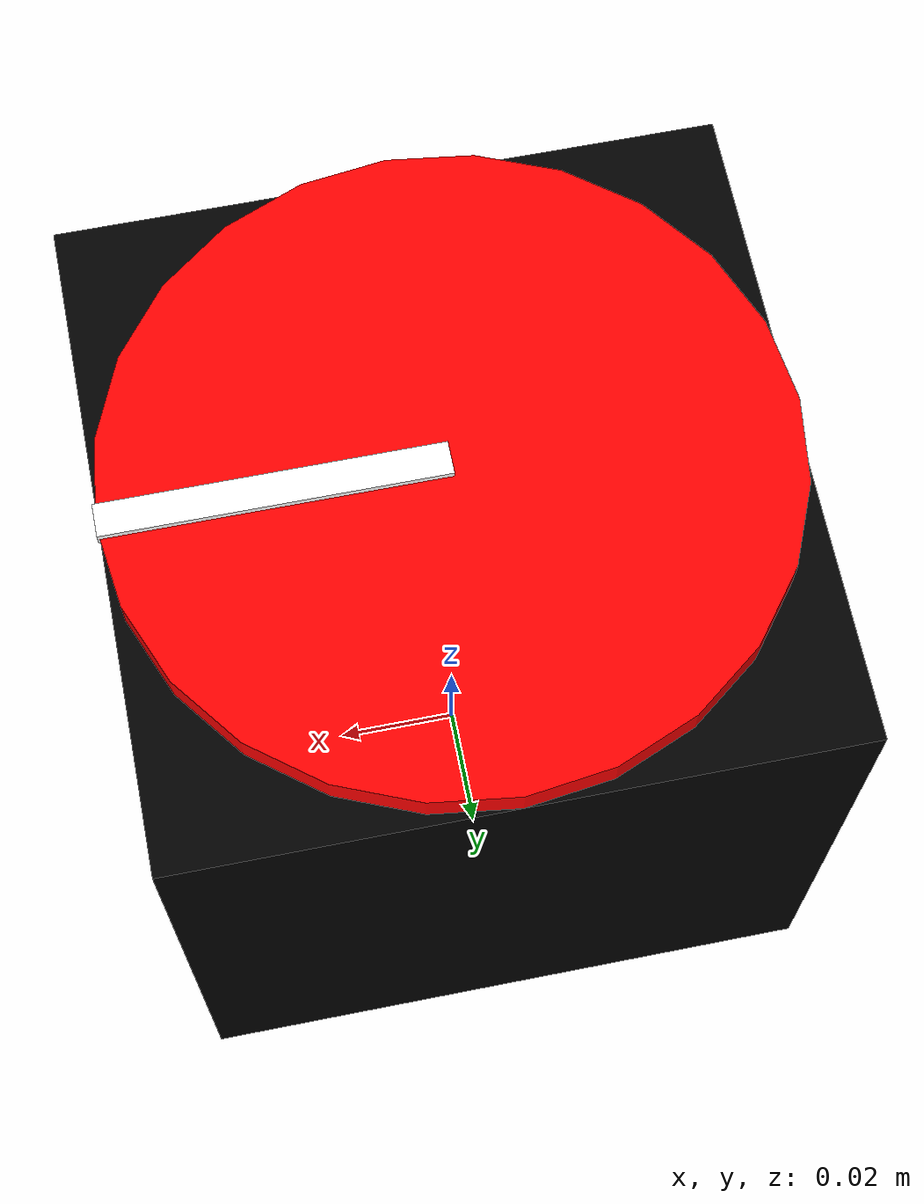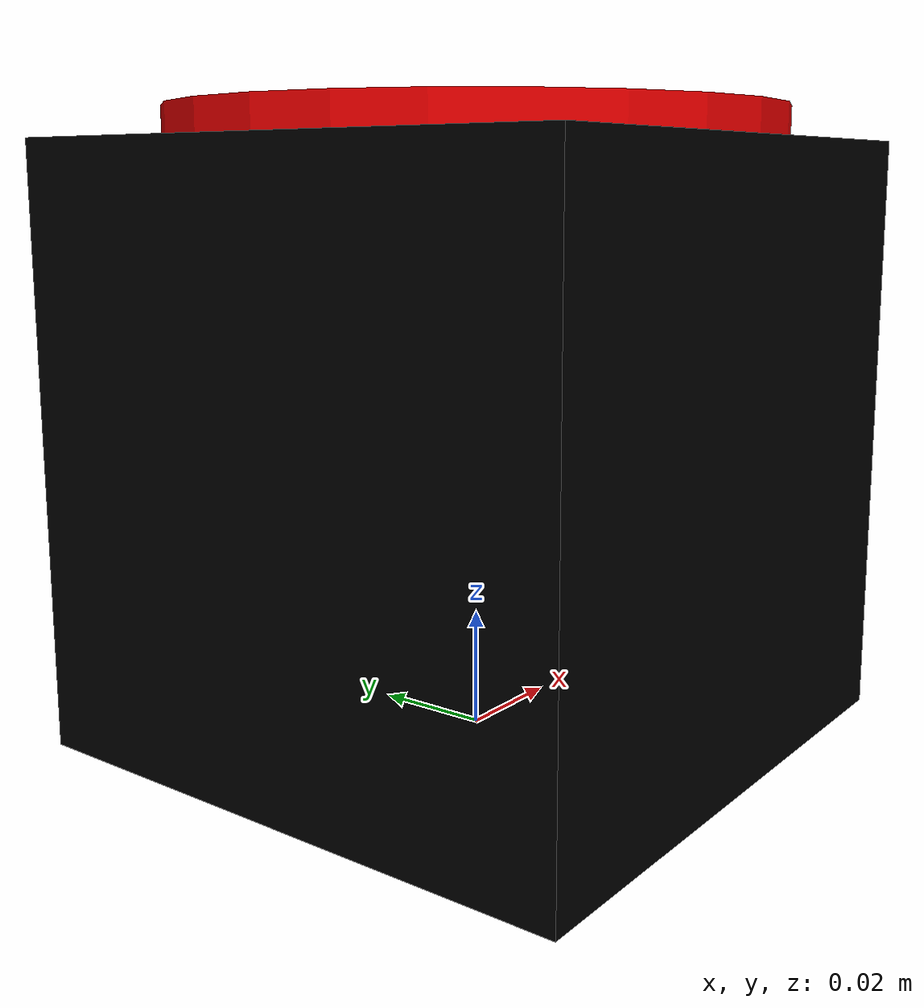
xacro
<?xml version="1.0"?>
<robot xmlns:xacro="http://www.ros.org/wiki/xacro" name="controlled_qube">
  <xacro:arg name="baud_rate" default="115200"/>
  <xacro:arg name="device"    default="/dev/ttyACM0"/>
  <xacro:arg name="simulation" default="false"/>

  <!-- Inkluder qube.macro.xacro -->
  <xacro:include filename="$(find qube_description)/urdf/qube.macro.xacro"/>

  <link name="world"/>

  <!-- Kall qube -->
  <xacro:qube/>

  <joint name="base_to_world" type="fixed">
    <parent link="world"/>
    <child link="base_link"/>
  </joint>

  <!-- Inkluder driver‐makroen med parametre -->
  <xacro:include filename="$(find qube_driver)/ros2_control/qube_driver.ros2_control.xacro"/>
  <xacro:qube_driver_ros2_control
      name="qube_driver"
      prefix=""
      baud_rate="$(arg baud_rate)"
      device="$(arg device)"
      simulation="$(arg simulation)"/>

</robot>

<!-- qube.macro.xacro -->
<robot xmlns:xacro="http://www.ros.org/wiki/xacro">

  <xacro:macro name="qube" params="">

    <!-- Svart kube (base) -->
    <link name="base_link">
      <visual>
        <geometry>
          <box size="0.1 0.1 0.1"/>
        </geometry>
        <origin xyz="0 0 0.05"/>
        <material name="black">
          <color rgba="0 0 0 1"/>
        </material>
      </visual>
    </link>

    <!-- Rød disk oppå boksen -->
    <link name="disk_link">
      <visual>
        <geometry>
          <cylinder radius="0.05" length="0.01"/>
        </geometry>
        <origin xyz="0 0 0"/>
        <material name="red">
          <color rgba="1 0 0 1"/>
        </material>
      </visual>
    </link>

    <!-- Hvit viser oppå disken -->
    <link name="disk_pointer">
      <visual>
        <geometry>
          <box size="0.05 0.005 0.002"/>
        </geometry>
        <origin xyz="0.025 0 0.005"/>
        <material name="white">
          <color rgba="1 1 1 1"/>
        </material>
      </visual>
    </link>

    <!-- Joint: boks → disk -->
    <joint name="motor_joint" type="revolute">
      <parent link="base_link"/>
      <child link="disk_link"/>
      <origin xyz="0 0 0.1"/> <!-- Topp av kube -->
      <axis xyz="0 0 1"/>
      <limit effort="1.0" velocity="10.0" lower="-6.28" upper="6.28"/>
    </joint>

    <!-- Joint: disk → viser -->
    <joint name="indicator_joint" type="fixed">
      <parent link="disk_link"/>
      <child link="disk_pointer"/>
      <origin xyz="0 0 0"/>
    </joint>

  </xacro:macro>

</robot>
